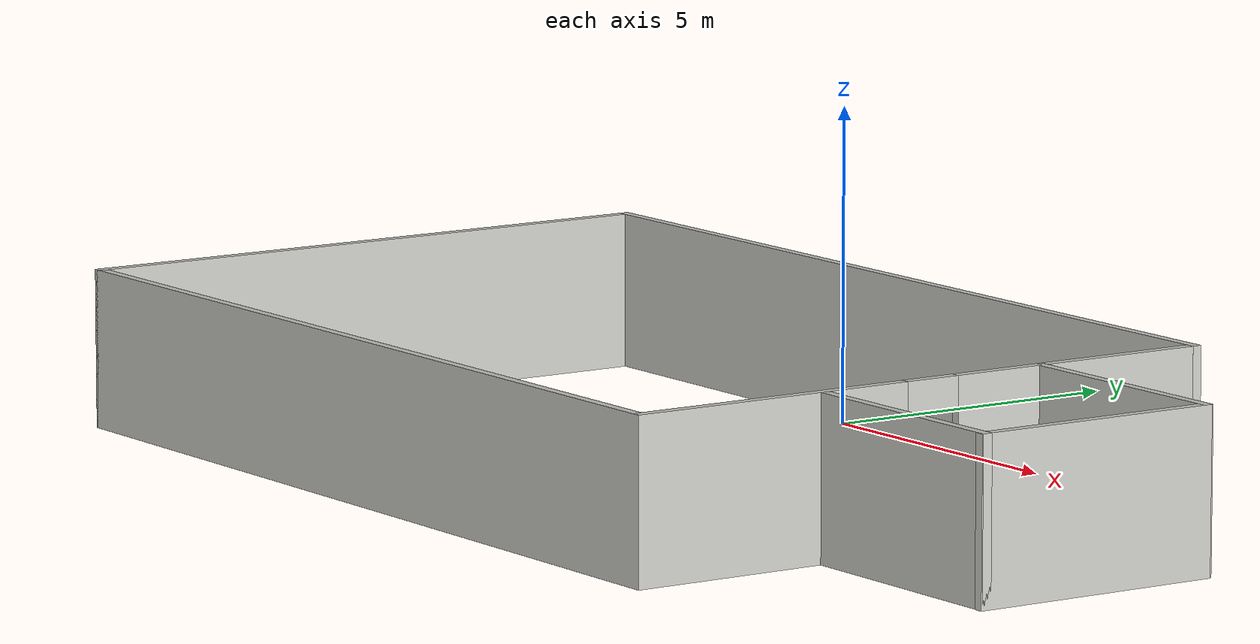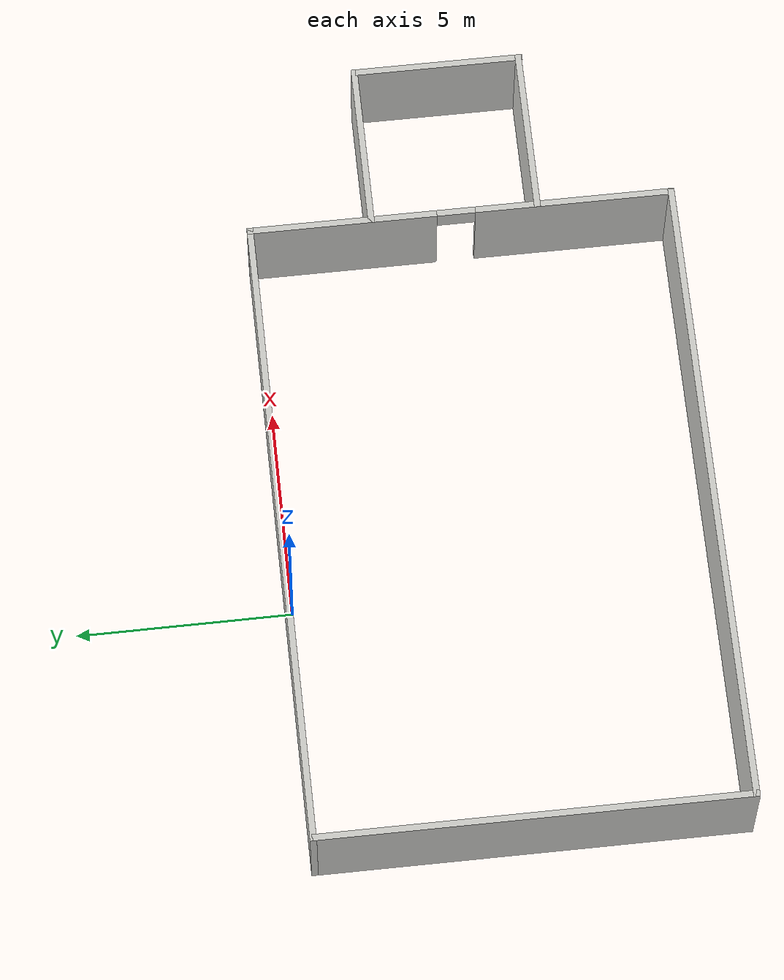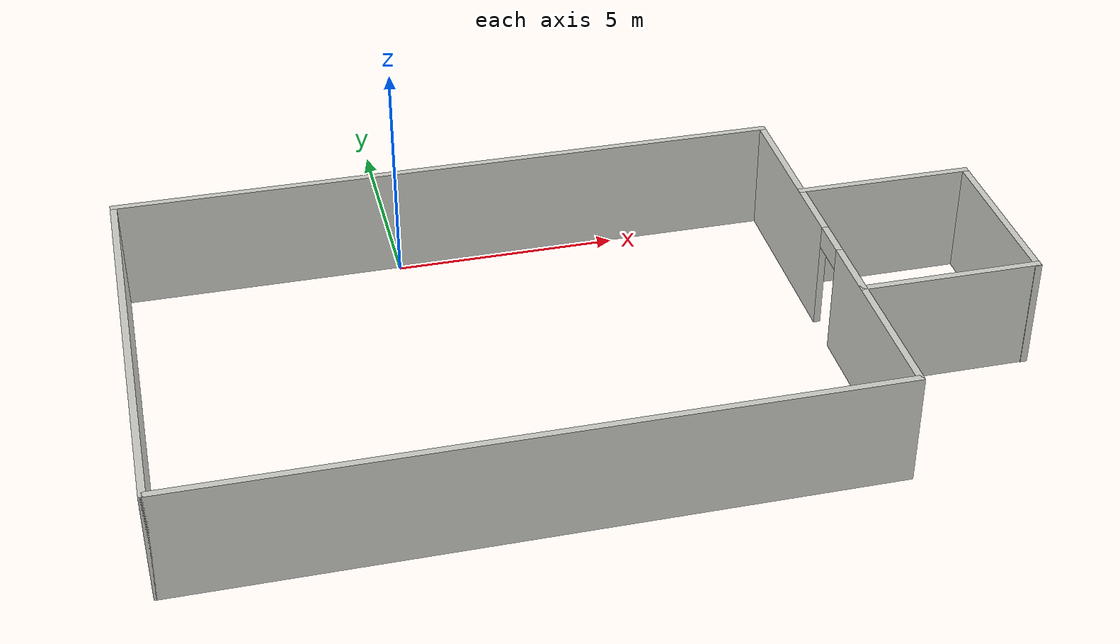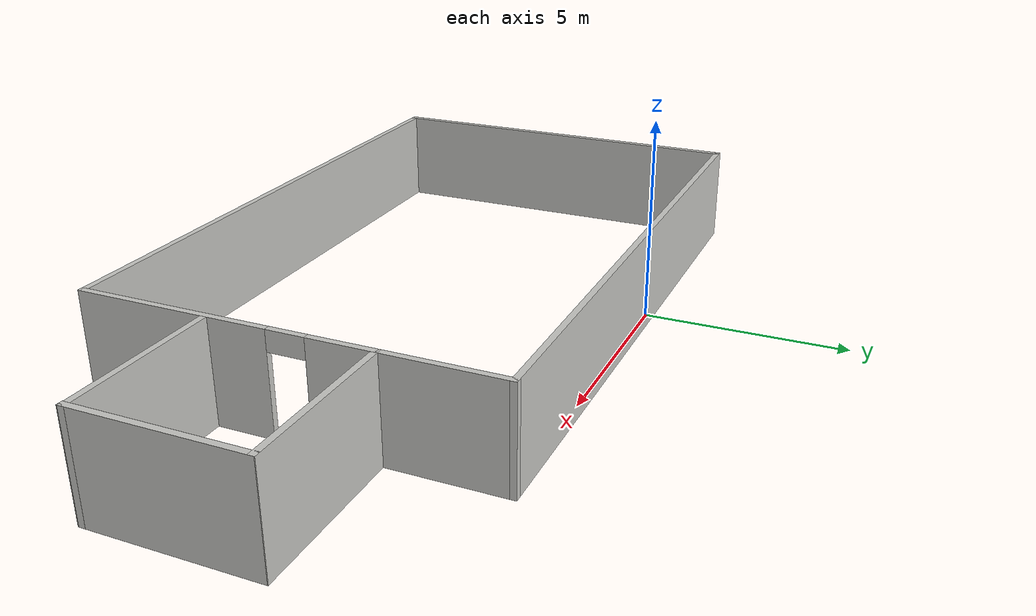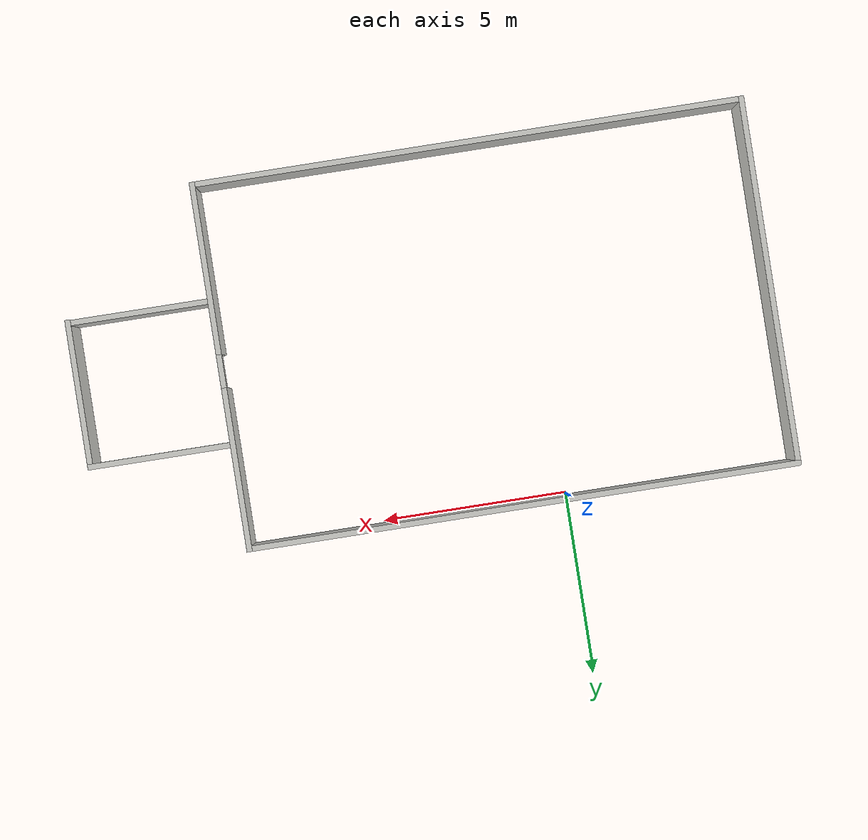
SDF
<?xml version='1.0'?>
<sdf version='1.7'>
  <model name='empty_room'>
    <pose>3.14913 -4.80826 0 0 -0 0</pose>
    <link name='Wall_80'>
      <pose>5.49892 0 0 0 -0 1.5708</pose>
      <visual name='Wall_80_Visual_0'>
        <pose>-2.66626 0 1.25 0 -0 0</pose>
        <geometry>
          <box>
            <size>4.66747 0.15 2.5</size>
          </box>
        </geometry>
        <material>
          <script>
            <uri>file://media/materials/scripts/gazebo.material</uri>
            <name>Gazebo/CeilingTiled</name>
          </script>
          <ambient>1 1 1 1</ambient>
        </material>
        <meta>
          <layer>0</layer>
        </meta>
      </visual>
      <collision name='Wall_80_Collision_0'>
        <geometry>
          <box>
            <size>4.66747 0.15 2.5</size>
          </box>
        </geometry>
        <pose>-2.66626 0 1.25 0 -0 0</pose>
      </collision>
      <visual name='Wall_80_Visual_1'>
        <pose>2.78374 0 1.25 0 -0 0</pose>
        <geometry>
          <box>
            <size>4.43253 0.15 2.5</size>
          </box>
        </geometry>
        <material>
          <script>
            <uri>file://media/materials/scripts/gazebo.material</uri>
            <name>Gazebo/CeilingTiled</name>
          </script>
          <ambient>1 1 1 1</ambient>
        </material>
        <meta>
          <layer>0</layer>
        </meta>
      </visual>
      <collision name='Wall_80_Collision_1'>
        <geometry>
          <box>
            <size>4.43253 0.15 2.5</size>
          </box>
        </geometry>
        <pose>2.78374 0 1.25 0 -0 0</pose>
      </collision>
      <visual name='Wall_80_Visual_2'>
        <pose>0.117473 0 2.25 0 -0 0</pose>
        <geometry>
          <box>
            <size>0.9 0.15 0.5</size>
          </box>
        </geometry>
        <material>
          <script>
            <uri>file://media/materials/scripts/gazebo.material</uri>
            <name>Gazebo/CeilingTiled</name>
          </script>
          <ambient>1 1 1 1</ambient>
        </material>
        <meta>
          <layer>0</layer>
        </meta>
      </visual>
      <collision name='Wall_80_Collision_2'>
        <geometry>
          <box>
            <size>0.9 0.15 0.5</size>
          </box>
        </geometry>
        <pose>0.117473 0 2.25 0 -0 0</pose>
      </collision>
    </link>
    <link name='Wall_81'>
      <collision name='Wall_81_Collision'>
        <geometry>
          <box>
            <size>15 0.15 2.5</size>
          </box>
        </geometry>
        <pose>0 0 1.25 0 -0 0</pose>
      </collision>
      <visual name='Wall_81_Visual'>
        <pose>0 0 1.25 0 -0 0</pose>
        <geometry>
          <box>
            <size>15 0.15 2.5</size>
          </box>
        </geometry>
        <material>
          <script>
            <uri>file://media/materials/scripts/gazebo.material</uri>
            <name>Gazebo/CeilingTiled</name>
          </script>
          <ambient>1 1 1 1</ambient>
        </material>
        <meta>
          <layer>0</layer>
        </meta>
      </visual>
      <pose>-1.92608 4.925 0 0 -0 3.14159</pose>
    </link>
    <link name='Wall_82'>
      <collision name='Wall_82_Collision'>
        <geometry>
          <box>
            <size>10 0.15 2.5</size>
          </box>
        </geometry>
        <pose>0 0 1.25 0 -0 0</pose>
      </collision>
      <visual name='Wall_82_Visual'>
        <pose>0 0 1.25 0 -0 0</pose>
        <geometry>
          <box>
            <size>10 0.15 2.5</size>
          </box>
        </geometry>
        <material>
          <script>
            <uri>file://media/materials/scripts/gazebo.material</uri>
            <name>Gazebo/CeilingTiled</name>
          </script>
          <ambient>1 1 1 1</ambient>
        </material>
        <meta>
          <layer>0</layer>
        </meta>
      </visual>
      <pose>-9.35108 0 0 0 -0 -1.5708</pose>
    </link>
    <link name='Wall_83'>
      <collision name='Wall_83_Collision'>
        <geometry>
          <box>
            <size>15 0.15 2.5</size>
          </box>
        </geometry>
        <pose>0 0 1.25 0 -0 0</pose>
      </collision>
      <visual name='Wall_83_Visual'>
        <pose>0 0 1.25 0 -0 0</pose>
        <geometry>
          <box>
            <size>15 0.15 2.5</size>
          </box>
        </geometry>
        <material>
          <script>
            <uri>file://media/materials/scripts/gazebo.material</uri>
            <name>Gazebo/CeilingTiled</name>
          </script>
          <ambient>1 1 1 1</ambient>
        </material>
        <meta>
          <layer>0</layer>
        </meta>
      </visual>
      <pose>-1.92608 -4.925 0 0 -0 0</pose>
    </link>
    <link name='Wall_85'>
      <collision name='Wall_85_Collision'>
        <geometry>
          <box>
            <size>4 0.15 2.5</size>
          </box>
        </geometry>
        <pose>0 0 1.25 0 -0 0</pose>
      </collision>
      <visual name='Wall_85_Visual'>
        <pose>0 0 1.25 0 -0 0</pose>
        <geometry>
          <box>
            <size>4 0.15 2.5</size>
          </box>
        </geometry>
        <material>
          <script>
            <uri>file://media/materials/scripts/gazebo.material</uri>
            <name>Gazebo/CeilingTiled</name>
          </script>
          <ambient>1 1 1 1</ambient>
        </material>
        <meta>
          <layer>0</layer>
        </meta>
      </visual>
      <pose>7.42608 2.10171 0 0 -0 0</pose>
    </link>
    <link name='Wall_86'>
      <collision name='Wall_86_Collision'>
        <geometry>
          <box>
            <size>4.03498 0.15 2.5</size>
          </box>
        </geometry>
        <pose>0 0 1.25 0 -0 0</pose>
      </collision>
      <visual name='Wall_86_Visual'>
        <pose>0 0 1.25 0 -0 0</pose>
        <geometry>
          <box>
            <size>4.03498 0.15 2.5</size>
          </box>
        </geometry>
        <material>
          <script>
            <uri>file://media/materials/scripts/gazebo.material</uri>
            <name>Gazebo/CeilingTiled</name>
          </script>
          <ambient>1 1 1 1</ambient>
        </material>
        <meta>
          <layer>0</layer>
        </meta>
      </visual>
      <pose>9.35108 0.141728 0 0 -0 -1.5708</pose>
    </link>
    <link name='Wall_87'>
      <collision name='Wall_87_Collision'>
        <geometry>
          <box>
            <size>4 0.15 2.5</size>
          </box>
        </geometry>
        <pose>0 0 1.25 0 -0 0</pose>
      </collision>
      <visual name='Wall_87_Visual'>
        <pose>0 0 1.25 0 -0 0</pose>
        <geometry>
          <box>
            <size>4 0.15 2.5</size>
          </box>
        </geometry>
        <material>
          <script>
            <uri>file://media/materials/scripts/gazebo.material</uri>
            <name>Gazebo/CeilingTiled</name>
          </script>
          <ambient>1 1 1 1</ambient>
        </material>
        <meta>
          <layer>0</layer>
        </meta>
      </visual>
      <pose>7.42608 -1.78327 0 0 -0 3.14159</pose>
    </link>
    <static>1</static>
  </model>
</sdf>
